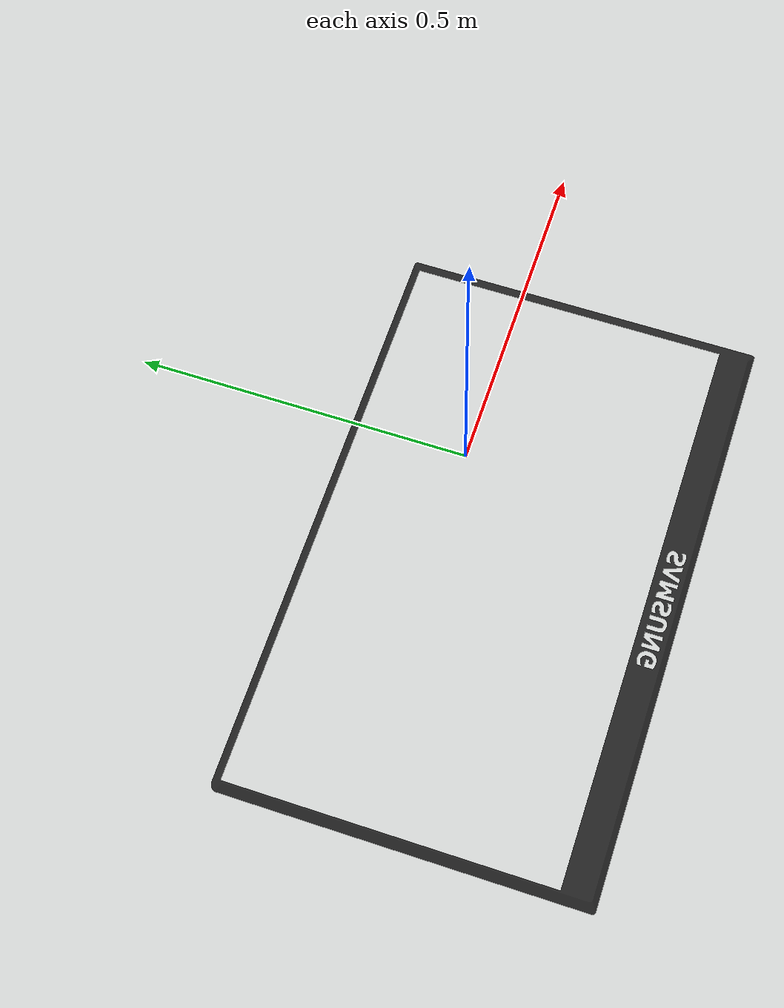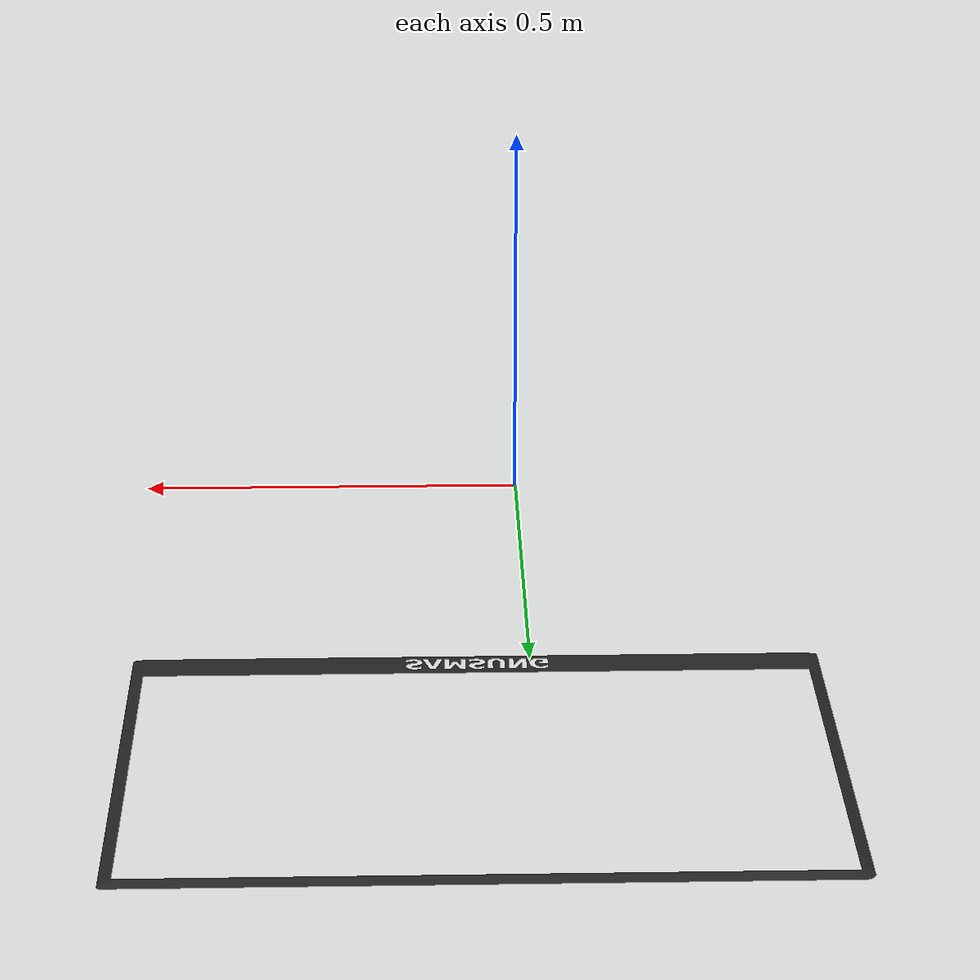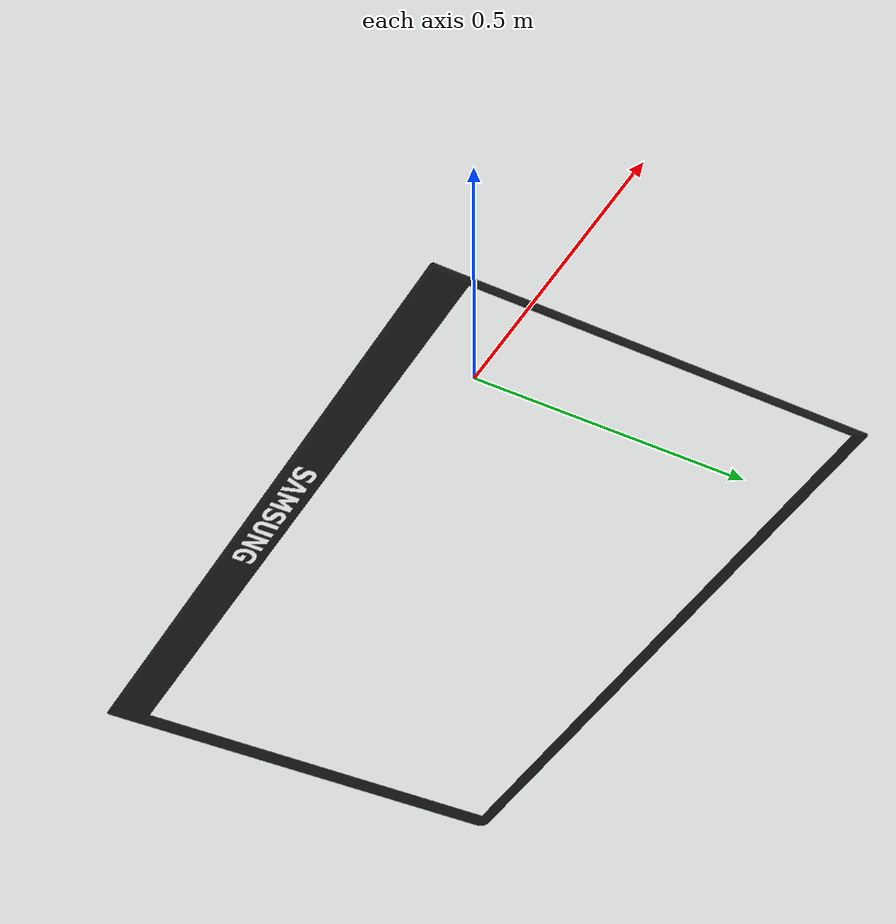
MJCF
<mujoco model="original-102">
  <default>
    <default class="visual">
      <geom group="2" type="mesh" contype="0" conaffinity="0"/>
    </default>
    <default class="collision">
      <geom group="3" type="mesh"/>
    </default>
  </default>
  <asset>
    <material name="material_0_0" specular="0.06666666666666667" shininess="0.03" rgba="0.13333333333333333 0.13333333333333333 0.13333333333333333 1"/>
    <mesh file="original-102.obj"/>
  </asset>
  <worldbody>
    <body name="original-102">
      <geom material="material_0_0" mesh="original-102" class="visual"/>
      <geom mesh="original-102" class="collision"/>
    </body>
  </worldbody>
</mujoco>
